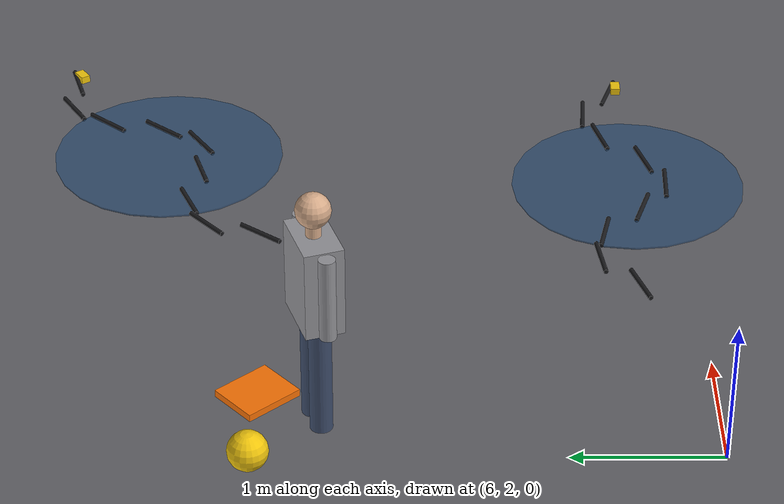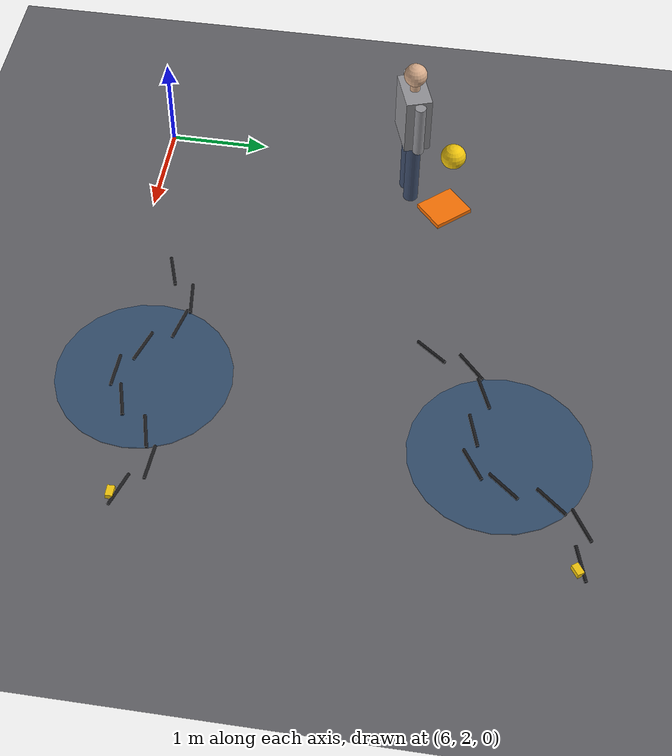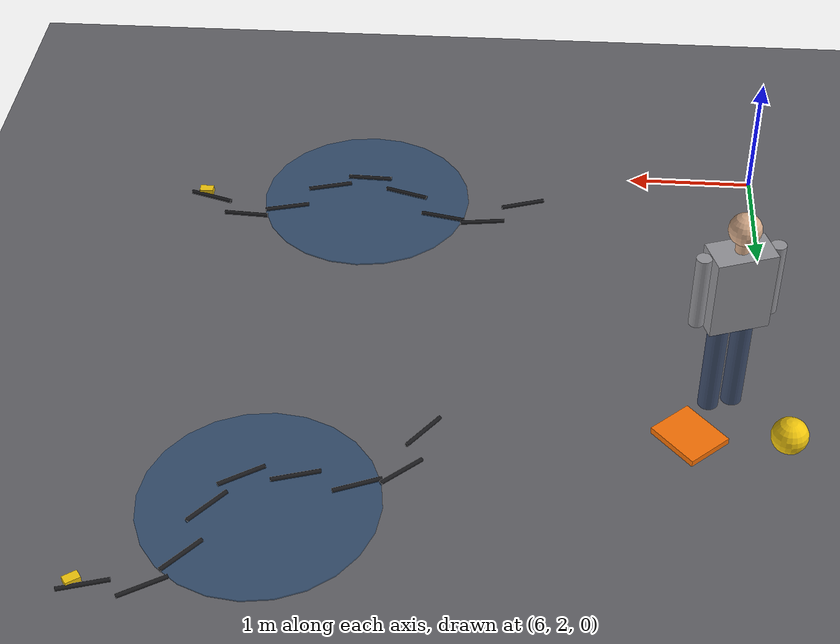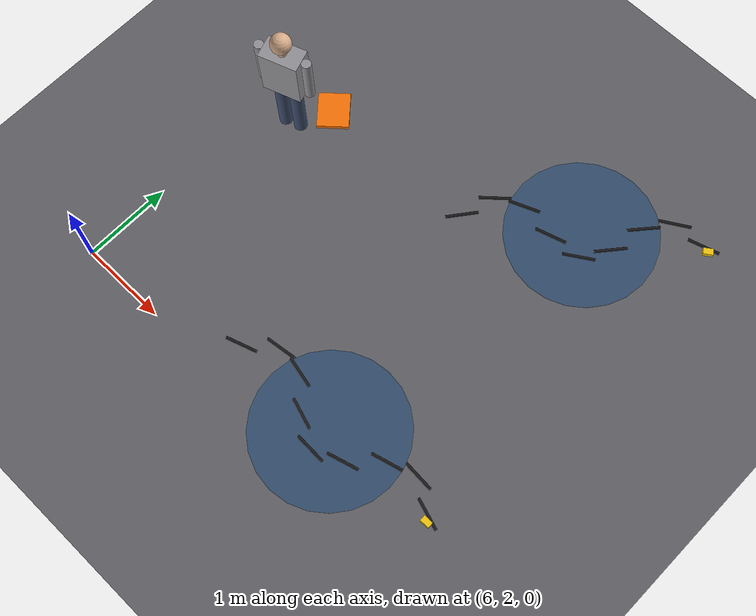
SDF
<sdf version="1.6">
 <world name="construction_lab_A">
  <model name="ground">
   <static>1</static>
   <link name="ground_link">
    <collision name="ground_col">
     <geometry><plane><normal>0 0 1</normal><size>60 60</size></plane></geometry>
     <surface><friction><ode><mu>0.9</mu><mu2>0.9</mu2></ode></friction></surface>
    </collision>
    <visual name="ground_vis">
     <geometry><plane><normal>0 0 1</normal><size>60 60</size></plane></geometry>
     <material><ambient>0.30 0.30 0.32 1</ambient><diffuse>0.38 0.38 0.40 1</diffuse></material>
    </visual>
   </link>
  </model>
  <model name="hazard_A3">
   <static>1</static>
   <link name="hA3_worker_no_ppe_leg_l">
    <pose>6.31483 4.5709 0.4 0 0 0</pose>
    <gravity>0</gravity>
    <collision name="hA3_worker_no_ppe_leg_l_col">
     <geometry><cylinder><radius>0.075</radius><length>0.8</length></cylinder></geometry>
    </collision>
    <visual name="hA3_worker_no_ppe_leg_l_vis">
     <geometry><cylinder><radius>0.075</radius><length>0.8</length></cylinder></geometry>
     <material>
      <ambient>0.24 0.3 0.42 1</ambient>
      <diffuse>0.24 0.3 0.42 1</diffuse>
      <specular>0.1 0.1 0.1 1</specular>
     </material>
    </visual>
   </link>
   <link name="hA3_worker_no_ppe_leg_r">
    <pose>6.48517 4.6291 0.4 0 0 0</pose>
    <gravity>0</gravity>
    <collision name="hA3_worker_no_ppe_leg_r_col">
     <geometry><cylinder><radius>0.075</radius><length>0.8</length></cylinder></geometry>
    </collision>
    <visual name="hA3_worker_no_ppe_leg_r_vis">
     <geometry><cylinder><radius>0.075</radius><length>0.8</length></cylinder></geometry>
     <material>
      <ambient>0.24 0.3 0.42 1</ambient>
      <diffuse>0.24 0.3 0.42 1</diffuse>
      <specular>0.1 0.1 0.1 1</specular>
     </material>
    </visual>
   </link>
   <link name="hA3_worker_no_ppe_torso">
    <pose>6.4 4.6 1.11 0 0 1.9</pose>
    <gravity>0</gravity>
    <collision name="hA3_worker_no_ppe_torso_col">
     <geometry><box><size>0.26 0.44 0.62</size></box></geometry>
    </collision>
    <visual name="hA3_worker_no_ppe_torso_vis">
     <geometry><box><size>0.26 0.44 0.62</size></box></geometry>
     <material>
      <ambient>0.58 0.58 0.6 1</ambient>
      <diffuse>0.58 0.58 0.6 1</diffuse>
      <specular>0.1 0.1 0.1 1</specular>
     </material>
    </visual>
   </link>
   <link name="hA3_worker_no_ppe_arm0">
    <pose>6.6555 4.68729 1.12 0 0 0</pose>
    <gravity>0</gravity>
    <collision name="hA3_worker_no_ppe_arm0_col">
     <geometry><cylinder><radius>0.055</radius><length>0.58</length></cylinder></geometry>
    </collision>
    <visual name="hA3_worker_no_ppe_arm0_vis">
     <geometry><cylinder><radius>0.055</radius><length>0.58</length></cylinder></geometry>
     <material>
      <ambient>0.58 0.58 0.6 1</ambient>
      <diffuse>0.58 0.58 0.6 1</diffuse>
      <specular>0.1 0.1 0.1 1</specular>
     </material>
    </visual>
   </link>
   <link name="hA3_worker_no_ppe_arm1">
    <pose>6.1445 4.51271 1.12 0 0 0</pose>
    <gravity>0</gravity>
    <collision name="hA3_worker_no_ppe_arm1_col">
     <geometry><cylinder><radius>0.055</radius><length>0.58</length></cylinder></geometry>
    </collision>
    <visual name="hA3_worker_no_ppe_arm1_vis">
     <geometry><cylinder><radius>0.055</radius><length>0.58</length></cylinder></geometry>
     <material>
      <ambient>0.58 0.58 0.6 1</ambient>
      <diffuse>0.58 0.58 0.6 1</diffuse>
      <specular>0.1 0.1 0.1 1</specular>
     </material>
    </visual>
   </link>
   <link name="hA3_worker_no_ppe_neck">
    <pose>6.4 4.6 1.46 0 0 0</pose>
    <gravity>0</gravity>
    <collision name="hA3_worker_no_ppe_neck_col">
     <geometry><cylinder><radius>0.05</radius><length>0.09</length></cylinder></geometry>
    </collision>
    <visual name="hA3_worker_no_ppe_neck_vis">
     <geometry><cylinder><radius>0.05</radius><length>0.09</length></cylinder></geometry>
     <material>
      <ambient>0.85 0.68 0.55 1</ambient>
      <diffuse>0.85 0.68 0.55 1</diffuse>
      <specular>0.1 0.1 0.1 1</specular>
     </material>
    </visual>
   </link>
   <link name="hA3_worker_no_ppe_head">
    <pose>6.4 4.6 1.6 0 0 0</pose>
    <gravity>0</gravity>
    <collision name="hA3_worker_no_ppe_head_col">
     <geometry><sphere><radius>0.115</radius></sphere></geometry>
    </collision>
    <visual name="hA3_worker_no_ppe_head_vis">
     <geometry><sphere><radius>0.115</radius></sphere></geometry>
     <material>
      <ambient>0.85 0.68 0.55 1</ambient>
      <diffuse>0.85 0.68 0.55 1</diffuse>
      <specular>0.1 0.1 0.1 1</specular>
     </material>
    </visual>
   </link>
   <link name="hA3_ppe_on_floor_hat">
    <pose>5.9383 5.02348 0.1 0 0 0</pose>
    <gravity>0</gravity>
    <collision name="hA3_ppe_on_floor_hat_col">
     <geometry><sphere><radius>0.135</radius></sphere></geometry>
    </collision>
    <visual name="hA3_ppe_on_floor_hat_vis">
     <geometry><sphere><radius>0.135</radius></sphere></geometry>
     <material>
      <ambient>0.95 0.78 0.05 1</ambient>
      <diffuse>0.95 0.78 0.05 1</diffuse>
      <specular>0.1 0.1 0.1 1</specular>
     </material>
    </visual>
   </link>
   <link name="hA3_ppe_on_floor_vest">
    <pose>6.63422 4.99704 0.025 0 0 2.3</pose>
    <gravity>0</gravity>
    <collision name="hA3_ppe_on_floor_vest_col">
     <geometry><box><size>0.42 0.36 0.05</size></box></geometry>
    </collision>
    <visual name="hA3_ppe_on_floor_vest_vis">
     <geometry><box><size>0.42 0.36 0.05</size></box></geometry>
     <material>
      <ambient>0.98 0.45 0.02 1</ambient>
      <diffuse>0.98 0.45 0.02 1</diffuse>
      <specular>0.1 0.1 0.1 1</specular>
     </material>
    </visual>
   </link>
  </model>
  <model name="hazard_A4">
   <static>1</static>
   <link name="hA4_water_puddle_water">
    <pose>9.2 2.4 0.006 0 0 0</pose>
    <gravity>0</gravity>
    <collision name="hA4_water_puddle_water_col">
     <geometry><cylinder><radius>0.85</radius><length>0.012</length></cylinder></geometry>
    </collision>
    <visual name="hA4_water_puddle_water_vis">
     <geometry><cylinder><radius>0.85</radius><length>0.012</length></cylinder></geometry>
     <material>
      <ambient>0.18 0.32 0.48 0.72</ambient>
      <diffuse>0.18 0.32 0.48 0.72</diffuse>
      <specular>0.1 0.1 0.1 1</specular>
     </material>
    </visual>
   </link>
   <link name="hA4_extension_cord_c0">
    <pose>7.9 2.4 0.017 0 1.5708 0.32</pose>
    <gravity>0</gravity>
    <collision name="hA4_extension_cord_c0_col">
     <geometry><cylinder><radius>0.017</radius><length>0.36</length></cylinder></geometry>
    </collision>
    <visual name="hA4_extension_cord_c0_vis">
     <geometry><cylinder><radius>0.017</radius><length>0.36</length></cylinder></geometry>
     <material>
      <ambient>0.1 0.1 0.11 1</ambient>
      <diffuse>0.1 0.1 0.11 1</diffuse>
      <specular>0.1 0.1 0.1 1</specular>
     </material>
    </visual>
   </link>
   <link name="hA4_extension_cord_c1">
    <pose>8.225 2.65557 0.017 0 1.5708 0.130716</pose>
    <gravity>0</gravity>
    <collision name="hA4_extension_cord_c1_col">
     <geometry><cylinder><radius>0.017</radius><length>0.36</length></cylinder></geometry>
    </collision>
    <visual name="hA4_extension_cord_c1_vis">
     <geometry><cylinder><radius>0.017</radius><length>0.36</length></cylinder></geometry>
     <material>
      <ambient>0.1 0.1 0.11 1</ambient>
      <diffuse>0.1 0.1 0.11 1</diffuse>
      <specular>0.1 0.1 0.1 1</specular>
     </material>
    </visual>
   </link>
   <link name="hA4_extension_cord_c2">
    <pose>8.55 2.6088 0.017 0 1.5708 -0.213208</pose>
    <gravity>0</gravity>
    <collision name="hA4_extension_cord_c2_col">
     <geometry><cylinder><radius>0.017</radius><length>0.36</length></cylinder></geometry>
    </collision>
    <visual name="hA4_extension_cord_c2_vis">
     <geometry><cylinder><radius>0.017</radius><length>0.36</length></cylinder></geometry>
     <material>
      <ambient>0.1 0.1 0.11 1</ambient>
      <diffuse>0.1 0.1 0.11 1</diffuse>
      <specular>0.1 0.1 0.1 1</specular>
     </material>
    </visual>
   </link>
   <link name="hA4_extension_cord_c3">
    <pose>8.875 2.31501 0.017 0 1.5708 -0.304902</pose>
    <gravity>0</gravity>
    <collision name="hA4_extension_cord_c3_col">
     <geometry><cylinder><radius>0.017</radius><length>0.36</length></cylinder></geometry>
    </collision>
    <visual name="hA4_extension_cord_c3_vis">
     <geometry><cylinder><radius>0.017</radius><length>0.36</length></cylinder></geometry>
     <material>
      <ambient>0.1 0.1 0.11 1</ambient>
      <diffuse>0.1 0.1 0.11 1</diffuse>
      <specular>0.1 0.1 0.1 1</specular>
     </material>
    </visual>
   </link>
   <link name="hA4_extension_cord_c4">
    <pose>9.2 2.12177 0.017 0 1.5708 -0.0358888</pose>
    <gravity>0</gravity>
    <collision name="hA4_extension_cord_c4_col">
     <geometry><cylinder><radius>0.017</radius><length>0.36</length></cylinder></geometry>
    </collision>
    <visual name="hA4_extension_cord_c4_vis">
     <geometry><cylinder><radius>0.017</radius><length>0.36</length></cylinder></geometry>
     <material>
      <ambient>0.1 0.1 0.11 1</ambient>
      <diffuse>0.1 0.1 0.11 1</diffuse>
      <specular>0.1 0.1 0.1 1</specular>
     </material>
    </visual>
   </link>
   <link name="hA4_extension_cord_c5">
    <pose>9.525 2.25768 0.017 0 1.5708 0.275582</pose>
    <gravity>0</gravity>
    <collision name="hA4_extension_cord_c5_col">
     <geometry><cylinder><radius>0.017</radius><length>0.36</length></cylinder></geometry>
    </collision>
    <visual name="hA4_extension_cord_c5_vis">
     <geometry><cylinder><radius>0.017</radius><length>0.36</length></cylinder></geometry>
     <material>
      <ambient>0.1 0.1 0.11 1</ambient>
      <diffuse>0.1 0.1 0.11 1</diffuse>
      <specular>0.1 0.1 0.1 1</specular>
     </material>
    </visual>
   </link>
   <link name="hA4_extension_cord_c6">
    <pose>9.85 2.56196 0.017 0 1.5708 0.261032</pose>
    <gravity>0</gravity>
    <collision name="hA4_extension_cord_c6_col">
     <geometry><cylinder><radius>0.017</radius><length>0.36</length></cylinder></geometry>
    </collision>
    <visual name="hA4_extension_cord_c6_vis">
     <geometry><cylinder><radius>0.017</radius><length>0.36</length></cylinder></geometry>
     <material>
      <ambient>0.1 0.1 0.11 1</ambient>
      <diffuse>0.1 0.1 0.11 1</diffuse>
      <specular>0.1 0.1 0.1 1</specular>
     </material>
    </visual>
   </link>
   <link name="hA4_extension_cord_c7">
    <pose>10.175 2.67464 0.017 0 1.5708 -0.062325</pose>
    <gravity>0</gravity>
    <collision name="hA4_extension_cord_c7_col">
     <geometry><cylinder><radius>0.017</radius><length>0.36</length></cylinder></geometry>
    </collision>
    <visual name="hA4_extension_cord_c7_vis">
     <geometry><cylinder><radius>0.017</radius><length>0.36</length></cylinder></geometry>
     <material>
      <ambient>0.1 0.1 0.11 1</ambient>
      <diffuse>0.1 0.1 0.11 1</diffuse>
      <specular>0.1 0.1 0.1 1</specular>
     </material>
    </visual>
   </link>
   <link name="hA4_extension_cord_c8">
    <pose>10.5 2.46241 0.017 0 1.5708 -0.31195</pose>
    <gravity>0</gravity>
    <collision name="hA4_extension_cord_c8_col">
     <geometry><cylinder><radius>0.017</radius><length>0.36</length></cylinder></geometry>
    </collision>
    <visual name="hA4_extension_cord_c8_vis">
     <geometry><cylinder><radius>0.017</radius><length>0.36</length></cylinder></geometry>
     <material>
      <ambient>0.1 0.1 0.11 1</ambient>
      <diffuse>0.1 0.1 0.11 1</diffuse>
      <specular>0.1 0.1 0.1 1</specular>
     </material>
    </visual>
   </link>
   <link name="hA4_extension_cord_plug">
    <pose>10.55 2.4 0.03 0 0 0</pose>
    <gravity>0</gravity>
    <collision name="hA4_extension_cord_plug_col">
     <geometry><box><size>0.11 0.07 0.055</size></box></geometry>
    </collision>
    <visual name="hA4_extension_cord_plug_vis">
     <geometry><box><size>0.11 0.07 0.055</size></box></geometry>
     <material>
      <ambient>0.95 0.78 0.05 1</ambient>
      <diffuse>0.95 0.78 0.05 1</diffuse>
      <specular>0.1 0.1 0.1 1</specular>
     </material>
    </visual>
   </link>
  </model>
  <model name="hazard_A5">
   <static>1</static>
   <link name="hA5_flexible_cord_c0">
    <pose>8.52706 5.06596 0.017 0 1.5708 0.92</pose>
    <gravity>0</gravity>
    <collision name="hA5_flexible_cord_c0_col">
     <geometry><cylinder><radius>0.017</radius><length>0.36</length></cylinder></geometry>
    </collision>
    <visual name="hA5_flexible_cord_c0_vis">
     <geometry><cylinder><radius>0.017</radius><length>0.36</length></cylinder></geometry>
     <material>
      <ambient>0.1 0.1 0.11 1</ambient>
      <diffuse>0.1 0.1 0.11 1</diffuse>
      <specular>0.1 0.1 0.1 1</specular>
     </material>
    </visual>
   </link>
   <link name="hA5_flexible_cord_c1">
    <pose>8.65099 5.46041 0.017 0 1.5708 0.730716</pose>
    <gravity>0</gravity>
    <collision name="hA5_flexible_cord_c1_col">
     <geometry><cylinder><radius>0.017</radius><length>0.36</length></cylinder></geometry>
    </collision>
    <visual name="hA5_flexible_cord_c1_vis">
     <geometry><cylinder><radius>0.017</radius><length>0.36</length></cylinder></geometry>
     <material>
      <ambient>0.1 0.1 0.11 1</ambient>
      <diffuse>0.1 0.1 0.11 1</diffuse>
      <specular>0.1 0.1 0.1 1</specular>
     </material>
    </visual>
   </link>
   <link name="hA5_flexible_cord_c2">
    <pose>8.94564 5.60531 0.017 0 1.5708 0.386792</pose>
    <gravity>0</gravity>
    <collision name="hA5_flexible_cord_c2_col">
     <geometry><cylinder><radius>0.017</radius><length>0.36</length></cylinder></geometry>
    </collision>
    <visual name="hA5_flexible_cord_c2_vis">
     <geometry><cylinder><radius>0.017</radius><length>0.36</length></cylinder></geometry>
     <material>
      <ambient>0.1 0.1 0.11 1</ambient>
      <diffuse>0.1 0.1 0.11 1</diffuse>
      <specular>0.1 0.1 0.1 1</specular>
     </material>
    </visual>
   </link>
   <link name="hA5_flexible_cord_c3">
    <pose>9.37976 5.54634 0.017 0 1.5708 0.295098</pose>
    <gravity>0</gravity>
    <collision name="hA5_flexible_cord_c3_col">
     <geometry><cylinder><radius>0.017</radius><length>0.36</length></cylinder></geometry>
    </collision>
    <visual name="hA5_flexible_cord_c3_vis">
     <geometry><cylinder><radius>0.017</radius><length>0.36</length></cylinder></geometry>
     <material>
      <ambient>0.1 0.1 0.11 1</ambient>
      <diffuse>0.1 0.1 0.11 1</diffuse>
      <specular>0.1 0.1 0.1 1</specular>
     </material>
    </visual>
   </link>
   <link name="hA5_flexible_cord_c4">
    <pose>9.7571 5.57036 0.017 0 1.5708 0.564111</pose>
    <gravity>0</gravity>
    <collision name="hA5_flexible_cord_c4_col">
     <geometry><cylinder><radius>0.017</radius><length>0.36</length></cylinder></geometry>
    </collision>
    <visual name="hA5_flexible_cord_c4_vis">
     <geometry><cylinder><radius>0.017</radius><length>0.36</length></cylinder></geometry>
     <material>
      <ambient>0.1 0.1 0.11 1</ambient>
      <diffuse>0.1 0.1 0.11 1</diffuse>
      <specular>0.1 0.1 0.1 1</specular>
     </material>
    </visual>
   </link>
   <link name="hA5_flexible_cord_c5">
    <pose>9.94859 5.86605 0.017 0 1.5708 0.875582</pose>
    <gravity>0</gravity>
    <collision name="hA5_flexible_cord_c5_col">
     <geometry><cylinder><radius>0.017</radius><length>0.36</length></cylinder></geometry>
    </collision>
    <visual name="hA5_flexible_cord_c5_vis">
     <geometry><cylinder><radius>0.017</radius><length>0.36</length></cylinder></geometry>
     <material>
      <ambient>0.1 0.1 0.11 1</ambient>
      <diffuse>0.1 0.1 0.11 1</diffuse>
      <specular>0.1 0.1 0.1 1</specular>
     </material>
    </visual>
   </link>
   <link name="hA5_flexible_cord_c6">
    <pose>10.045 6.30069 0.017 0 1.5708 0.861032</pose>
    <gravity>0</gravity>
    <collision name="hA5_flexible_cord_c6_col">
     <geometry><cylinder><radius>0.017</radius><length>0.36</length></cylinder></geometry>
    </collision>
    <visual name="hA5_flexible_cord_c6_vis">
     <geometry><cylinder><radius>0.017</radius><length>0.36</length></cylinder></geometry>
     <material>
      <ambient>0.1 0.1 0.11 1</ambient>
      <diffuse>0.1 0.1 0.11 1</diffuse>
      <specular>0.1 0.1 0.1 1</specular>
     </material>
    </visual>
   </link>
   <link name="hA5_flexible_cord_c7">
    <pose>10.2496 6.57719 0.017 0 1.5708 0.537675</pose>
    <gravity>0</gravity>
    <collision name="hA5_flexible_cord_c7_col">
     <geometry><cylinder><radius>0.017</radius><length>0.36</length></cylinder></geometry>
    </collision>
    <visual name="hA5_flexible_cord_c7_vis">
     <geometry><cylinder><radius>0.017</radius><length>0.36</length></cylinder></geometry>
     <material>
      <ambient>0.1 0.1 0.11 1</ambient>
      <diffuse>0.1 0.1 0.11 1</diffuse>
      <specular>0.1 0.1 0.1 1</specular>
     </material>
    </visual>
   </link>
   <link name="hA5_flexible_cord_c8">
    <pose>10.6377 6.58554 0.017 0 1.5708 0.28805</pose>
    <gravity>0</gravity>
    <collision name="hA5_flexible_cord_c8_col">
     <geometry><cylinder><radius>0.017</radius><length>0.36</length></cylinder></geometry>
    </collision>
    <visual name="hA5_flexible_cord_c8_vis">
     <geometry><cylinder><radius>0.017</radius><length>0.36</length></cylinder></geometry>
     <material>
      <ambient>0.1 0.1 0.11 1</ambient>
      <diffuse>0.1 0.1 0.11 1</diffuse>
      <specular>0.1 0.1 0.1 1</specular>
     </material>
    </visual>
   </link>
   <link name="hA5_flexible_cord_plug">
    <pose>10.7142 6.56227 0.03 0 0 0.6</pose>
    <gravity>0</gravity>
    <collision name="hA5_flexible_cord_plug_col">
     <geometry><box><size>0.11 0.07 0.055</size></box></geometry>
    </collision>
    <visual name="hA5_flexible_cord_plug_vis">
     <geometry><box><size>0.11 0.07 0.055</size></box></geometry>
     <material>
      <ambient>0.95 0.78 0.05 1</ambient>
      <diffuse>0.95 0.78 0.05 1</diffuse>
      <specular>0.1 0.1 0.1 1</specular>
     </material>
    </visual>
   </link>
   <link name="hA5_water_puddle_water">
    <pose>9.6 5.8 0.006 0 0 0</pose>
    <gravity>0</gravity>
    <collision name="hA5_water_puddle_water_col">
     <geometry><cylinder><radius>0.85</radius><length>0.012</length></cylinder></geometry>
    </collision>
    <visual name="hA5_water_puddle_water_vis">
     <geometry><cylinder><radius>0.85</radius><length>0.012</length></cylinder></geometry>
     <material>
      <ambient>0.18 0.32 0.48 0.72</ambient>
      <diffuse>0.18 0.32 0.48 0.72</diffuse>
      <specular>0.1 0.1 0.1 1</specular>
     </material>
    </visual>
   </link>
  </model>
 </world>
</sdf>
